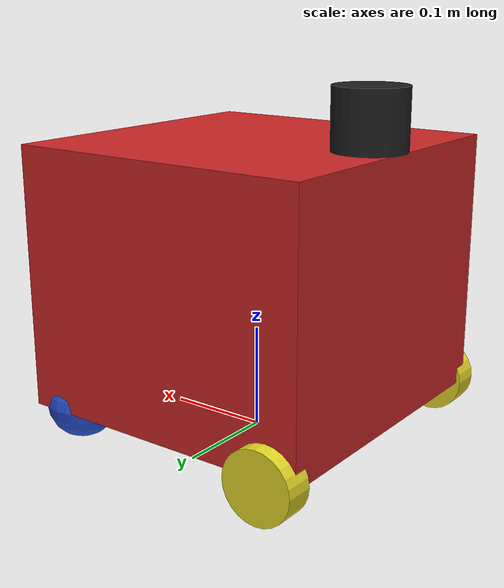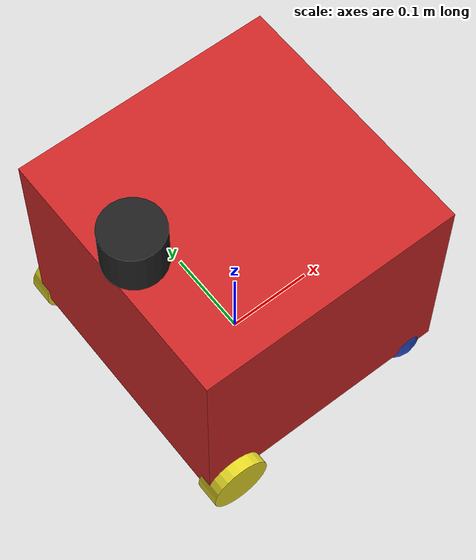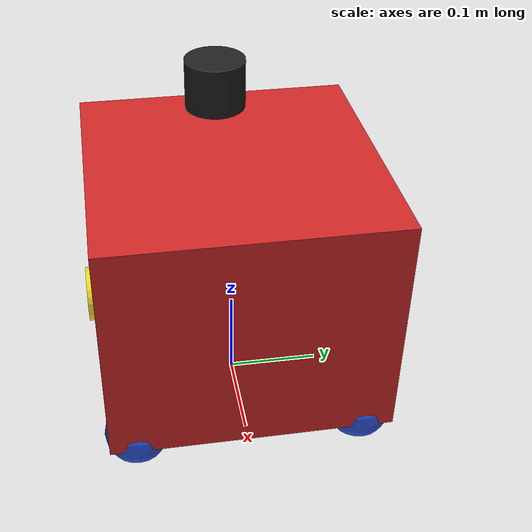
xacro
<?xml version="1.0"?>

<!--                   URDF DESCRIPTION                    -->

<robot name="mapping_robot" xmlns:xacro="http://www.ros.org/wiki/xacro">

<!--                 Geometry && Constants                 -->

<!-- PI Constant -->
<xacro:property name="PI" value="3.14159265359"/>

<!-- Body Box Dimensions -->
<!-- R = side of robot body -->
<!-- H = height of robot body -->
<xacro:property name="R" value="0.3"/>
<xacro:property name="H" value="0.25"/>

<!-- Wheels Dimensions -->
<!-- r = wheels && caster radius -->
<!-- w = wheels width -->
<xacro:property name="r" value="0.034"/>  <!-- irl it's 0.034 -->
<xacro:property name="w" value="0.028"/>

<!-- Lengths to centers -->
<!-- s1 = length from c1 to c2 -->
<!-- s2 = length from c2 to c3 && c2 to c4 -->
<!-- s3 = length from c2 to c5 -->
<xacro:property name="s1" value="${H/2+r}"/>
<xacro:property name="s2" value="${R/2.0}"/>
<xacro:property name="s3" value="${R/2.0-0.03}"/>

<!--                    Mass && Inertia                    -->

<!-- Material density -->
<!-- Body material density -->
<xacro:property name="d1" value="155.0"/>
<!-- Wheel material density -->
<xacro:property name="d2" value="100.0"/>
<!-- Caster material density -->
<xacro:property name="d3" value="130.0"/>

<!-- ################### MASS, VOLUME, CENTER OF MASS EQU ################### -->
<!-- Volumes -->
<!-- Volumes cylinders: V = PI*w*r^2 -->
<!-- Volumes sphere: V = (4/3)*PI*r^3 -->

<!-- Masses -->
<!-- Masses of cylinders: M = DENSITY*V -->
<!-- Masses of sphere: M = DENSITY*V -->

<!-- Momments of inertia -->
<!-- Momments of inertia of cylinders:
(
Ix = (1/12)*M*((3*r^2)+w^2)
Iy = (1/12)*M*((3*r^2)+w^2)
Iz = (1/2)*M*r^2
) -->
<!-- Momments of inertia of sphere:
(
Ix = (2/5)*M*r^2
Iy = (2/5)*M*r^2
Iz = (2/5)*M*r^2
) -->

<!-- MASSES -->
<!-- Body -->
<xacro:property name="m1" value="${d1*H*R*R}"/>
<!-- Wheel -->
<xacro:property name="m2" value="${d2*PI*w*r*r}"/>
<!-- Caster -->
<xacro:property name="m3" value="${d3*(4.0/3.0)*PI*r*r*r}"/>

<!-- Momments of inertia Body -->
<xacro:property name="Ix_body" value="${(1.0/12.0)*m1*(R*R+H*H)}"/>
<xacro:property name="Iy_body" value="${(1.0/12.0)*m1*(R*R+H*H)}"/>
<xacro:property name="Iz_body" value="${(1.0/12.0)*m1*(R*R+R*R)}"/>

<!-- Momments of inertia Wheel -->
<xacro:property name="I_wheel" value="${(1.0/12.0)*m2*(3.0*r*r+w*w)}"/>
<xacro:property name="Iz_wheel" value="${0.5*m2*r*r}"/>

<!-- Momments of inertia Caster -->
<xacro:property name="I_caster" value="${0.4*m3*r*r}"/>

<!-- Center of mass body (c2) -->
<xacro:macro name="inertia_body">
    <inertial>
    <origin rpy="0 0 0" xyz="0 0 ${s1}"/>
    <mass value="${m1}"/>
    <inertia ixx="${Ix_body}" ixy="0.0" ixz="0.0" iyy="${Iy_body}" iyz="0.0" izz="${Iz_body}"/>
    </inertial>
</xacro:macro>

<!-- Center of mass wheel (c3-c4) -->
<xacro:macro name="inertia_wheel">
    <inertial>
    <origin rpy="1.5707963 0 0" xyz="0 0 0"/>
    <mass value="${m2}"/>
    <inertia ixx="${I_wheel}" ixy="0.0" ixz="0.0" iyy="${I_wheel}" iyz="0.0" izz="${Iz_wheel}"/>
    </inertial>
</xacro:macro>

<!-- Center of mass caster (c5) -->
<xacro:macro name="inertia_caster">
    <inertial>
    <origin rpy="0 0 0" xyz="0 0 0"/>
    <mass value="${m3}"/>
    <inertia ixx="${I_caster}" ixy="0.0" ixz="0.0" iyy="${I_caster}" iyz="0.0" izz="${I_caster}"/>
    </inertial>
</xacro:macro>

<!--               Include additional files                -->

<xacro:include filename="$(find RL_robot)/model/robot.gazebo"/>

<!--                    Links && Joints                    -->

<!-- a neccessery link for gazebo (base footprint = c1, body link = c2) -->
<link name="base_footprint"> </link>

<joint name="body_link_joint" type="fixed">
    <parent link="base_footprint"/>
    <child link="body_link"/>
</joint>

<!-- Body link -->
<link name="body_link">
    <visual>
        <geometry>
            <box size="${R} ${R} ${H}"/>
        </geometry>
        <origin rpy="0 0 0" xyz="0 0 ${s1}"/>
    </visual>
    <collision>
        <geometry>
            <box size="${R} ${R} ${H}"/>
        </geometry>
        <origin rpy="0 0 0" xyz="0 0 ${s1}"/>
    </collision>
    <xacro:inertia_body />
</link>

<!-- ####### Wheels ####### -->
<!-- wheel1 -->
<joint name="wheel1_joint" type="continuous">
    <parent link="body_link"/>
    <child link="wheel1_link"/>
    <origin rpy="0 0 0" xyz="${-s3} ${-s2} ${r}"/>
    <axis xyz="0 1 0"/>
    <limit effort="0.7" velocity="30.0"/>
    <dynamics damping="0.05" friction="0.05"/>
</joint>

<!-- wheel1 link -->
<link name="wheel1_link">
    <visual>
        <geometry>
            <cylinder length="${w}" radius="${r}"/>
        </geometry>
        <origin rpy="1.5707963 0 0" xyz="0 0 0"/>
    </visual>
    <collision>
        <geometry>
            <cylinder length="${w}" radius="${r}"/>
        </geometry>
        <origin rpy="1.5707963 0 0" xyz="0 0 0"/>
    </collision>
    <xacro:inertia_wheel />
</link>

<!-- wheel2 -->
<joint name="wheel2_joint" type="continuous">
    <parent link="body_link"/>
    <child link="wheel2_link"/>
    <origin rpy="0 0 0" xyz="${-s3} ${s2} ${r}"/>
    <axis xyz="0 1 0"/>
    <limit effort="0.7" velocity="30.0"/>
    <dynamics damping="0.05" friction="0.05"/>
</joint>

<!-- wheel2 link -->
<link name="wheel2_link">
    <visual>
        <geometry>
            <cylinder length="${w}" radius="${r}"/>
        </geometry>
        <origin rpy="1.5707963 0 0" xyz="0 0 0"/>
    </visual>
    <collision>
        <geometry>
            <cylinder length="${w}" radius="${r}"/>
        </geometry>
        <origin rpy="1.5707963 0 0" xyz="0 0 0"/>
    </collision>
    <xacro:inertia_wheel />
</link>

<!-- ####### Casters ####### -->
<!-- caster1 -->
<joint name="caster1_joint" type="fixed">
    <parent link="body_link"/>
    <child link="caster1_link"/>
</joint>

<!-- caster1 link -->
<link name="caster1_link">
    <visual>
        <geometry>
            <sphere radius="${r}"/>
        </geometry>
        <origin rpy="0 0 0" xyz="${s3} ${s3} ${r}"/>
    </visual>
    <collision>
        <geometry>
            <sphere radius="${r}"/>
        </geometry>
        <origin rpy="0 0 0" xyz="${s3} ${s3} ${r}"/>
    </collision>
    <xacro:inertia_caster />
</link>

<!-- caster2 -->
<joint name="caster2_joint" type="fixed">
    <parent link="body_link"/>
    <child link="caster2_link"/>
</joint>

<!-- caster2 link -->
<link name="caster2_link">
    <visual>
        <geometry>
            <sphere radius="${r}"/>
        </geometry>
        <origin rpy="0 0 0" xyz="${s3} ${-s3} ${r}"/>
    </visual>
    <collision>
        <geometry>
            <sphere radius="${r}"/>
        </geometry>
        <origin rpy="0 0 0" xyz="${s3} ${-s3} ${r}"/>
    </collision>
    <xacro:inertia_caster />
</link>

<!-- RPLIDAR sensor -->
<joint name="lidar_joint" type="fixed">
    <parent link="body_link"/>
    <child link="lidar_link"/>
</joint>

<!-- rplidar link -->
<link name="lidar_link">
    <visual>
        <geometry>
            <cylinder length="${2*w}" radius="${r}"/>
        </geometry>
        <origin rpy="0 0 0" xyz="${-s3} 0 ${(H/2)+w+s1}"/>
    </visual>
    <collision>
        <geometry>
            <cylinder length="${2*w}" radius="${r}"/>
        </geometry>
        <origin rpy="0 0 0" xyz="${-s3} 0 ${(H/2)+w+s1}"/>
    </collision>
    <xacro:inertia_wheel />
</link>

<!-- END                                                   -->

</robot>
